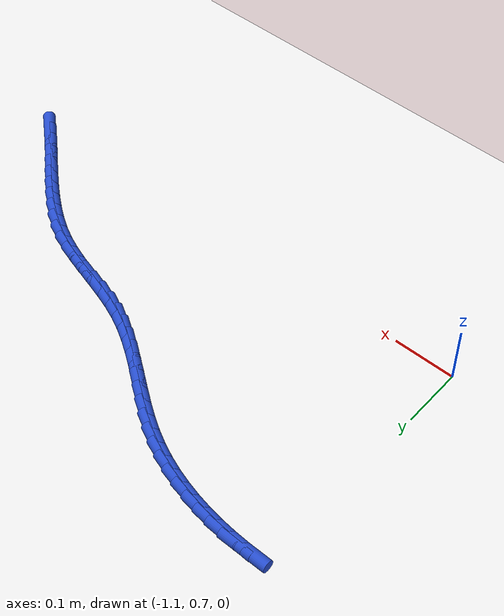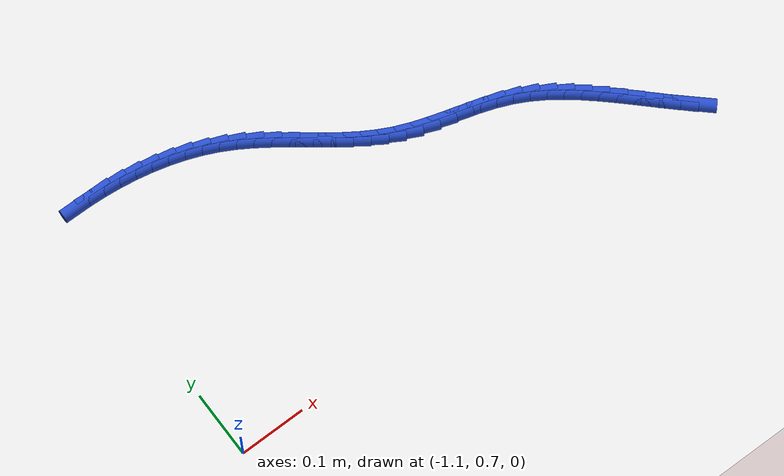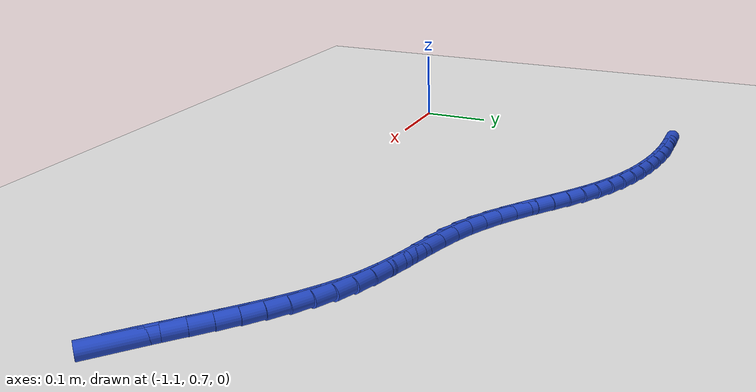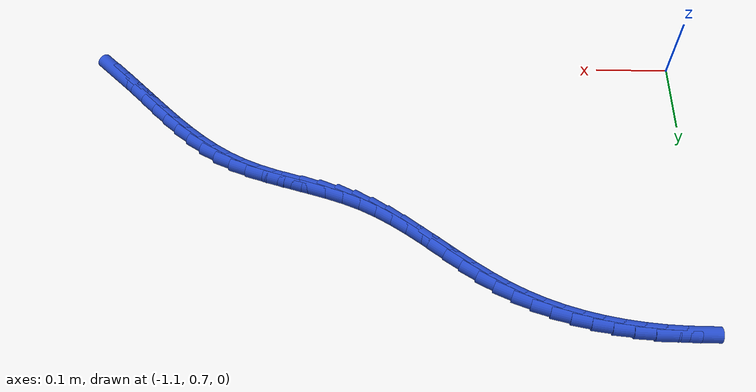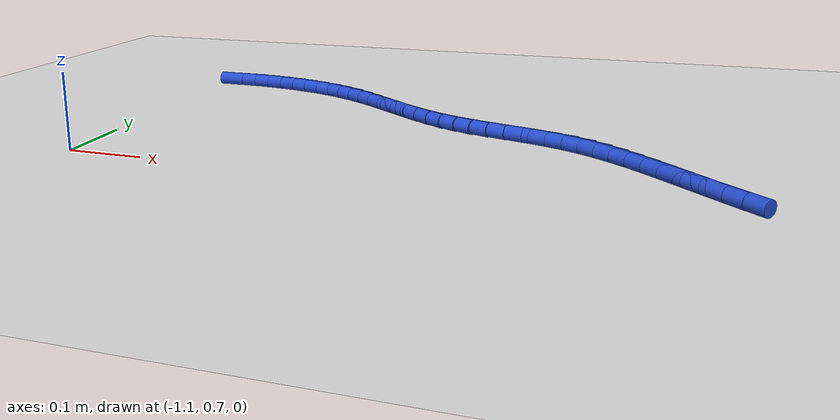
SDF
<sdf version="1.6">
 <world name="default">
  <model name="ground_plane">
   <static>1</static>
   <link name="link">
    <collision name="collision">
     <geometry><plane><normal>0 0 1</normal><size>100 100</size></plane></geometry>
     <surface><friction><ode><mu>100</mu><mu2>50</mu2></ode></friction></surface>
    </collision>
    <visual name="visual">
     <cast_shadows>0</cast_shadows>
     <geometry><plane><normal>0 0 1</normal><size>100 100</size></plane></geometry>
     <material>
      <script><uri>file://media/materials/scripts/gazebo.material</uri><name>Gazebo/WhiteGlow</name></script>
     </material>
    </visual>
   </link>
  </model>
  <model name="line">
   <link name="link_34">
    <pose>-0.3160388248367355 0.7284801673239301 0.01 0 1.57 -0.740562881369543</pose>
    <collision name="collision">
     <geometry><cylinder><radius>0.01</radius><length>0.08</length></cylinder></geometry>
    </collision>
    <visual name="visual">
     <material>
      <script><name>Gazebo/Blue</name><uri>file://media/materials/scripts/gazebo.material</uri></script>
     </material>
     <geometry><cylinder><radius>0.01</radius><length>0.08</length></cylinder></geometry>
    </visual>
   </link>
   <link name="link_35">
    <pose>-0.33448552711817664 0.7453427080973823 0.01 0 1.57 -0.756917644604557</pose>
    <collision name="collision">
     <geometry><cylinder><radius>0.01</radius><length>0.08</length></cylinder></geometry>
    </collision>
    <visual name="visual">
     <material>
      <script><name>Gazebo/Blue</name><uri>file://media/materials/scripts/gazebo.material</uri></script>
     </material>
     <geometry><cylinder><radius>0.01</radius><length>0.08</length></cylinder></geometry>
    </visual>
   </link>
   <link name="link_36">
    <pose>-0.3526326278672488 0.7624844912916813 0.01 0 1.57 -0.7622892568804119</pose>
    <collision name="collision">
     <geometry><cylinder><radius>0.01</radius><length>0.08</length></cylinder></geometry>
    </collision>
    <visual name="visual">
     <material>
      <script><name>Gazebo/Blue</name><uri>file://media/materials/scripts/gazebo.material</uri></script>
     </material>
     <geometry><cylinder><radius>0.01</radius><length>0.08</length></cylinder></geometry>
    </visual>
   </link>
   <link name="link_37">
    <pose>-0.37063116729618645 0.7796698251209919 0.01 0 1.57 -0.7566063400374159</pose>
    <collision name="collision">
     <geometry><cylinder><radius>0.01</radius><length>0.08</length></cylinder></geometry>
    </collision>
    <visual name="visual">
     <material>
      <script><name>Gazebo/Blue</name><uri>file://media/materials/scripts/gazebo.material</uri></script>
     </material>
     <geometry><cylinder><radius>0.01</radius><length>0.08</length></cylinder></geometry>
    </visual>
   </link>
   <link name="link_38">
    <pose>-0.3886321856172238 0.7966630177994796 0.01 0 1.57 -0.7396587050464527</pose>
    <collision name="collision">
     <geometry><cylinder><radius>0.01</radius><length>0.08</length></cylinder></geometry>
    </collision>
    <visual name="visual">
     <material>
      <script><name>Gazebo/Blue</name><uri>file://media/materials/scripts/gazebo.material</uri></script>
     </material>
     <geometry><cylinder><radius>0.01</radius><length>0.08</length></cylinder></geometry>
    </visual>
   </link>
   <link name="link_39">
    <pose>-0.4067867230425957 0.8132283775413099 0.01 0 1.57 -0.7111115890399681</pose>
    <collision name="collision">
     <geometry><cylinder><radius>0.01</radius><length>0.08</length></cylinder></geometry>
    </collision>
    <visual name="visual">
     <material>
      <script><name>Gazebo/Blue</name><uri>file://media/materials/scripts/gazebo.material</uri></script>
     </material>
     <geometry><cylinder><radius>0.01</radius><length>0.08</length></cylinder></geometry>
    </visual>
   </link>
   <link name="link_40">
    <pose>-0.42524581978453607 0.8291302125606475 0.01 0 1.57 -0.6705639966204211</pose>
    <collision name="collision">
     <geometry><cylinder><radius>0.01</radius><length>0.08</length></cylinder></geometry>
    </collision>
    <visual name="visual">
     <material>
      <script><name>Gazebo/Blue</name><uri>file://media/materials/scripts/gazebo.material</uri></script>
     </material>
     <geometry><cylinder><radius>0.01</radius><length>0.08</length></cylinder></geometry>
    </visual>
   </link>
   <link name="link_41">
    <pose>-0.44416051605527956 0.8441328310716576 0.01 0 1.57 -0.6176633760938435</pose>
    <collision name="collision">
     <geometry><cylinder><radius>0.01</radius><length>0.08</length></cylinder></geometry>
    </collision>
    <visual name="visual">
     <material>
      <script><name>Gazebo/Blue</name><uri>file://media/materials/scripts/gazebo.material</uri></script>
     </material>
     <geometry><cylinder><radius>0.01</radius><length>0.08</length></cylinder></geometry>
    </visual>
   </link>
   <link name="link_42">
    <pose>-0.4636818520670607 0.8580005412885058 0.01 0 1.57 -0.5522883748226314</pose>
    <collision name="collision">
     <geometry><cylinder><radius>0.01</radius><length>0.08</length></cylinder></geometry>
    </collision>
    <visual name="visual">
     <material>
      <script><name>Gazebo/Blue</name><uri>file://media/materials/scripts/gazebo.material</uri></script>
     </material>
     <geometry><cylinder><radius>0.01</radius><length>0.08</length></cylinder></geometry>
    </visual>
   </link>
   <link name="link_43">
    <pose>-0.4839608680321136 0.8704976514253568 0.01 0 1.57 -0.4747967986765887</pose>
    <collision name="collision">
     <geometry><cylinder><radius>0.01</radius><length>0.08</length></cylinder></geometry>
    </collision>
    <visual name="visual">
     <material>
      <script><name>Gazebo/Blue</name><uri>file://media/materials/scripts/gazebo.material</uri></script>
     </material>
     <geometry><cylinder><radius>0.01</radius><length>0.08</length></cylinder></geometry>
    </visual>
   </link>
   <link name="link_44">
    <pose>-0.505148604123842 0.8813884697635778 0.01 0 1.57 -0.39247734417948216</pose>
    <collision name="collision">
     <geometry><cylinder><radius>0.01</radius><length>0.08</length></cylinder></geometry>
    </collision>
    <visual name="visual">
     <material>
      <script><name>Gazebo/Blue</name><uri>file://media/materials/scripts/gazebo.material</uri></script>
     </material>
     <geometry><cylinder><radius>0.01</radius><length>0.08</length></cylinder></geometry>
    </visual>
   </link>
   <link name="link_45">
    <pose>-0.5273212125200486 0.8905669053662899 0.01 0 1.57 -0.3303107650152126</pose>
    <collision name="collision">
     <geometry><cylinder><radius>0.01</radius><length>0.08</length></cylinder></geometry>
    </collision>
    <visual name="visual">
     <material>
      <script><name>Gazebo/Blue</name><uri>file://media/materials/scripts/gazebo.material</uri></script>
     </material>
     <geometry><cylinder><radius>0.01</radius><length>0.08</length></cylinder></geometry>
    </visual>
   </link>
   <link name="link_46">
    <pose>-0.5502624832592734 0.8984328277179245 0.01 0 1.57 -0.29341472476749</pose>
    <collision name="collision">
     <geometry><cylinder><radius>0.01</radius><length>0.08</length></cylinder></geometry>
    </collision>
    <visual name="visual">
     <material>
      <script><name>Gazebo/Blue</name><uri>file://media/materials/scripts/gazebo.material</uri></script>
     </material>
     <geometry><cylinder><radius>0.01</radius><length>0.08</length></cylinder></geometry>
    </visual>
   </link>
   <link name="link_47">
    <pose>-0.5736848703679669 0.9055095600401898 0.01 0 1.57 -0.2807818260994357</pose>
    <collision name="collision">
     <geometry><cylinder><radius>0.01</radius><length>0.08</length></cylinder></geometry>
    </collision>
    <visual name="visual">
     <material>
      <script><name>Gazebo/Blue</name><uri>file://media/materials/scripts/gazebo.material</uri></script>
     </material>
     <geometry><cylinder><radius>0.01</radius><length>0.08</length></cylinder></geometry>
    </visual>
   </link>
   <link name="link_48">
    <pose>-0.5973008278725801 0.9123204255547945 0.01 0 1.57 -0.2919141352040017</pose>
    <collision name="collision">
     <geometry><cylinder><radius>0.01</radius><length>0.08</length></cylinder></geometry>
    </collision>
    <visual name="visual">
     <material>
      <script><name>Gazebo/Blue</name><uri>file://media/materials/scripts/gazebo.material</uri></script>
     </material>
     <geometry><cylinder><radius>0.01</radius><length>0.08</length></cylinder></geometry>
    </visual>
   </link>
   <link name="link_49">
    <pose>-0.6208228097995634 0.9193887474834468 0.01 0 1.57 -0.3270157027916848</pose>
    <collision name="collision">
     <geometry><cylinder><radius>0.01</radius><length>0.08</length></cylinder></geometry>
    </collision>
    <visual name="visual">
     <material>
      <script><name>Gazebo/Blue</name><uri>file://media/materials/scripts/gazebo.material</uri></script>
     </material>
     <geometry><cylinder><radius>0.01</radius><length>0.08</length></cylinder></geometry>
    </visual>
   </link>
   <link name="link_50">
    <pose>-0.6439632701753681 0.927237849047855 0.01 0 1.57 -0.386806727069559</pose>
    <collision name="collision">
     <geometry><cylinder><radius>0.01</radius><length>0.08</length></cylinder></geometry>
    </collision>
    <visual name="visual">
     <material>
      <script><name>Gazebo/Blue</name><uri>file://media/materials/scripts/gazebo.material</uri></script>
     </material>
     <geometry><cylinder><radius>0.01</radius><length>0.08</length></cylinder></geometry>
    </visual>
   </link>
   <link name="link_51">
    <pose>-0.6664346630744912 0.9363910533815369 0.01 0 1.57 -0.4648886362230707</pose>
    <collision name="collision">
     <geometry><cylinder><radius>0.01</radius><length>0.08</length></cylinder></geometry>
    </collision>
    <visual name="visual">
     <material>
      <script><name>Gazebo/Blue</name><uri>file://media/materials/scripts/gazebo.material</uri></script>
     </material>
     <geometry><cylinder><radius>0.01</radius><length>0.08</length></cylinder></geometry>
    </visual>
   </link>
   <link name="link_52">
    <pose>-0.6880306744134747 0.9472225814167777 0.01 0 1.57 -0.5334709822494902</pose>
    <collision name="collision">
     <geometry><cylinder><radius>0.01</radius><length>0.08</length></cylinder></geometry>
    </collision>
    <visual name="visual">
     <material>
      <script><name>Gazebo/Blue</name><uri>file://media/materials/scripts/gazebo.material</uri></script>
     </material>
     <geometry><cylinder><radius>0.01</radius><length>0.08</length></cylinder></geometry>
    </visual>
   </link>
   <link name="link_53">
    <pose>-0.7088617702876907 0.959525199562828 0.01 0 1.57 -0.5853380820975453</pose>
    <collision name="collision">
     <geometry><cylinder><radius>0.01</radius><length>0.08</length></cylinder></geometry>
    </collision>
    <visual name="visual">
     <material>
      <script><name>Gazebo/Blue</name><uri>file://media/materials/scripts/gazebo.material</uri></script>
     </material>
     <geometry><cylinder><radius>0.01</radius><length>0.08</length></cylinder></geometry>
    </visual>
   </link>
   <link name="link_54">
    <pose>-0.7291156258576577 0.9729499558919091 0.01 0 1.57 -0.620554885119948</pose>
    <collision name="collision">
     <geometry><cylinder><radius>0.01</radius><length>0.08</length></cylinder></geometry>
    </collision>
    <visual name="visual">
     <material>
      <script><name>Gazebo/Blue</name><uri>file://media/materials/scripts/gazebo.material</uri></script>
     </material>
     <geometry><cylinder><radius>0.01</radius><length>0.08</length></cylinder></geometry>
    </visual>
   </link>
   <link name="link_55">
    <pose>-0.7489799162838935 0.9871478984762427 0.01 0 1.57 -0.6394323309043143</pose>
    <collision name="collision">
     <geometry><cylinder><radius>0.01</radius><length>0.08</length></cylinder></geometry>
    </collision>
    <visual name="visual">
     <material>
      <script><name>Gazebo/Blue</name><uri>file://media/materials/scripts/gazebo.material</uri></script>
     </material>
     <geometry><cylinder><radius>0.01</radius><length>0.08</length></cylinder></geometry>
    </visual>
   </link>
   <link name="link_56">
    <pose>-0.7686423167269157 1.0017700753880499 0.01 0 1.57 -0.642239997972152</pose>
    <collision name="collision">
     <geometry><cylinder><radius>0.01</radius><length>0.08</length></cylinder></geometry>
    </collision>
    <visual name="visual">
     <material>
      <script><name>Gazebo/Blue</name><uri>file://media/materials/scripts/gazebo.material</uri></script>
     </material>
     <geometry><cylinder><radius>0.01</radius><length>0.08</length></cylinder></geometry>
    </visual>
   </link>
   <link name="link_57">
    <pose>-0.7882905023472426 1.0164675346995524 0.01 0 1.57 -0.6290617705314179</pose>
    <collision name="collision">
     <geometry><cylinder><radius>0.01</radius><length>0.08</length></cylinder></geometry>
    </collision>
    <visual name="visual">
     <material>
      <script><name>Gazebo/Blue</name><uri>file://media/materials/scripts/gazebo.material</uri></script>
     </material>
     <geometry><cylinder><radius>0.01</radius><length>0.08</length></cylinder></geometry>
    </visual>
   </link>
   <link name="link_58">
    <pose>-0.808112148305392 1.0308913244829718 0.01 0 1.57 -0.5997766941632872</pose>
    <collision name="collision">
     <geometry><cylinder><radius>0.01</radius><length>0.08</length></cylinder></geometry>
    </collision>
    <visual name="visual">
     <material>
      <script><name>Gazebo/Blue</name><uri>file://media/materials/scripts/gazebo.material</uri></script>
     </material>
     <geometry><cylinder><radius>0.01</radius><length>0.08</length></cylinder></geometry>
    </visual>
   </link>
   <link name="link_59">
    <pose>-0.8282949297618812 1.0446924928105292 0.01 0 1.57 -0.5541593537986568</pose>
    <collision name="collision">
     <geometry><cylinder><radius>0.01</radius><length>0.08</length></cylinder></geometry>
    </collision>
    <visual name="visual">
     <material>
      <script><name>Gazebo/Blue</name><uri>file://media/materials/scripts/gazebo.material</uri></script>
     </material>
     <geometry><cylinder><radius>0.01</radius><length>0.08</length></cylinder></geometry>
    </visual>
   </link>
   <link name="link_60">
    <pose>-0.8490265218772292 1.0575220877544464 0.01 0 1.57 -0.4926872468066488</pose>
    <collision name="collision">
     <geometry><cylinder><radius>0.01</radius><length>0.08</length></cylinder></geometry>
    </collision>
    <visual name="visual">
     <material>
      <script><name>Gazebo/Blue</name><uri>file://media/materials/scripts/gazebo.material</uri></script>
     </material>
     <geometry><cylinder><radius>0.01</radius><length>0.08</length></cylinder></geometry>
    </visual>
   </link>
   <link name="link_61">
    <pose>-0.870486398023129 1.0690427125179196 0.01 0 1.57 -0.42581483931830555</pose>
    <collision name="collision">
     <geometry><cylinder><radius>0.01</radius><length>0.08</length></cylinder></geometry>
    </collision>
    <visual name="visual">
     <material>
      <script><name>Gazebo/Blue</name><uri>file://media/materials/scripts/gazebo.material</uri></script>
     </material>
     <geometry><cylinder><radius>0.01</radius><length>0.08</length></cylinder></geometry>
    </visual>
   </link>
   <link name="link_62">
    <pose>-0.8927085629435945 1.0791219145037056 0.01 0 1.57 -0.3624491934970863</pose>
    <collision name="collision">
     <geometry><cylinder><radius>0.01</radius><length>0.08</length></cylinder></geometry>
    </collision>
    <visual name="visual">
     <material>
      <script><name>Gazebo/Blue</name><uri>file://media/materials/scripts/gazebo.material</uri></script>
     </material>
     <geometry><cylinder><radius>0.01</radius><length>0.08</length></cylinder></geometry>
    </visual>
   </link>
   <link name="link_63">
    <pose>-0.9156021313994316 1.0878031929885184 0.01 0 1.57 -0.30281437556361046</pose>
    <collision name="collision">
     <geometry><cylinder><radius>0.01</radius><length>0.08</length></cylinder></geometry>
    </collision>
    <visual name="visual">
     <material>
      <script><name>Gazebo/Blue</name><uri>file://media/materials/scripts/gazebo.material</uri></script>
     </material>
     <geometry><cylinder><radius>0.01</radius><length>0.08</length></cylinder></geometry>
    </visual>
   </link>
   <link name="link_64">
    <pose>-0.9390721621305026 1.0951357615943462 0.01 0 1.57 -0.24675339543639713</pose>
    <collision name="collision">
     <geometry><cylinder><radius>0.01</radius><length>0.08</length></cylinder></geometry>
    </collision>
    <visual name="visual">
     <material>
      <script><name>Gazebo/Blue</name><uri>file://media/materials/scripts/gazebo.material</uri></script>
     </material>
     <geometry><cylinder><radius>0.01</radius><length>0.08</length></cylinder></geometry>
    </visual>
   </link>
   <link name="link_65">
    <pose>-0.9630237138766709 1.1011688339431802 0.01 0 1.57 -0.1940416436659456</pose>
    <collision name="collision">
     <geometry><cylinder><radius>0.01</radius><length>0.08</length></cylinder></geometry>
    </collision>
    <visual name="visual">
     <material>
      <script><name>Gazebo/Blue</name><uri>file://media/materials/scripts/gazebo.material</uri></script>
     </material>
     <geometry><cylinder><radius>0.01</radius><length>0.08</length></cylinder></geometry>
    </visual>
   </link>
   <link name="link_66">
    <pose>-0.987361845377799 1.1059516236570102 0.01 0 1.57 -0.14441011614494112</pose>
    <collision name="collision">
     <geometry><cylinder><radius>0.01</radius><length>0.08</length></cylinder></geometry>
    </collision>
    <visual name="visual">
     <material>
      <script><name>Gazebo/Blue</name><uri>file://media/materials/scripts/gazebo.material</uri></script>
     </material>
     <geometry><cylinder><radius>0.01</radius><length>0.08</length></cylinder></geometry>
    </visual>
   </link>
   <link name="link_67">
    <pose>-1.0119916153737492 1.1095333443578241 0.01 0 1.57 -0.09756324820961994</pose>
    <collision name="collision">
     <geometry><cylinder><radius>0.01</radius><length>0.08</length></cylinder></geometry>
    </collision>
    <visual name="visual">
     <material>
      <script><name>Gazebo/Blue</name><uri>file://media/materials/scripts/gazebo.material</uri></script>
     </material>
     <geometry><cylinder><radius>0.01</radius><length>0.08</length></cylinder></geometry>
    </visual>
   </link>
   <link name="link_68">
    <pose>-1.036818082604385 1.1119632096676135 0.01 0 1.57 -0.053191580065725955</pose>
    <collision name="collision">
     <geometry><cylinder><radius>0.01</radius><length>0.08</length></cylinder></geometry>
    </collision>
    <visual name="visual">
     <material>
      <script><name>Gazebo/Blue</name><uri>file://media/materials/scripts/gazebo.material</uri></script>
     </material>
     <geometry><cylinder><radius>0.01</radius><length>0.08</length></cylinder></geometry>
    </visual>
   </link>
   <link name="link_69">
    <pose>-1.061746305809568 1.113290433208367 0.01 0 1.57 -0.010979906737210596</pose>
    <collision name="collision">
     <geometry><cylinder><radius>0.01</radius><length>0.08</length></cylinder></geometry>
    </collision>
    <visual name="visual">
     <material>
      <script><name>Gazebo/Blue</name><uri>file://media/materials/scripts/gazebo.material</uri></script>
     </material>
     <geometry><cylinder><radius>0.01</radius><length>0.08</length></cylinder></geometry>
    </visual>
   </link>
  </model>
 </world>
</sdf>
